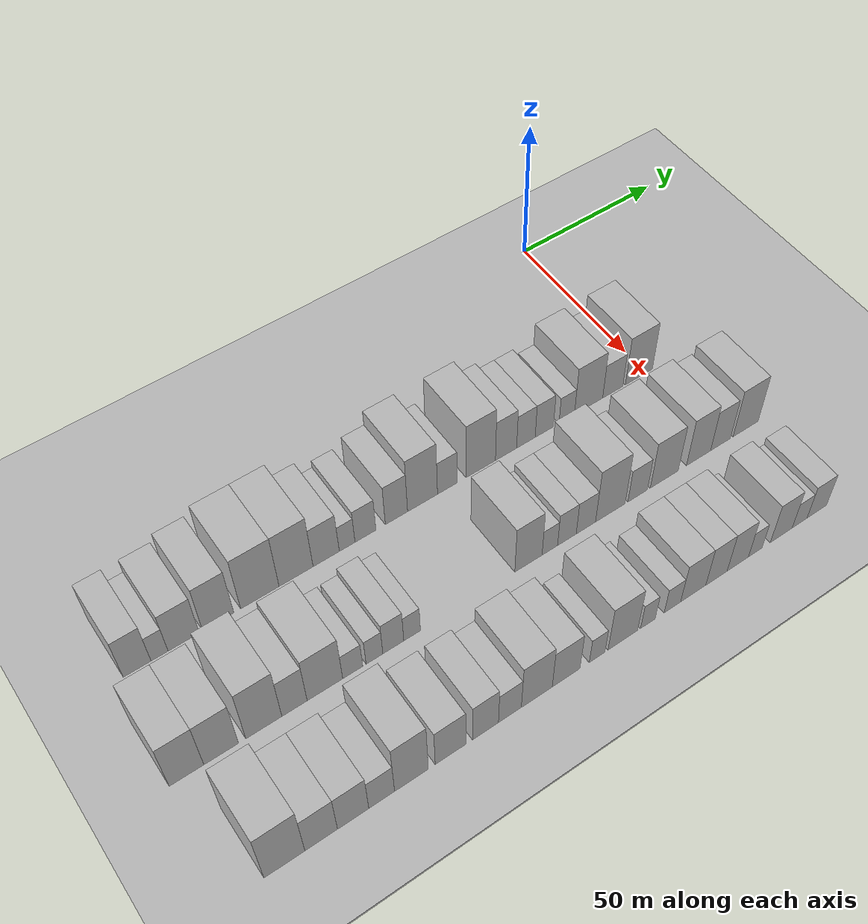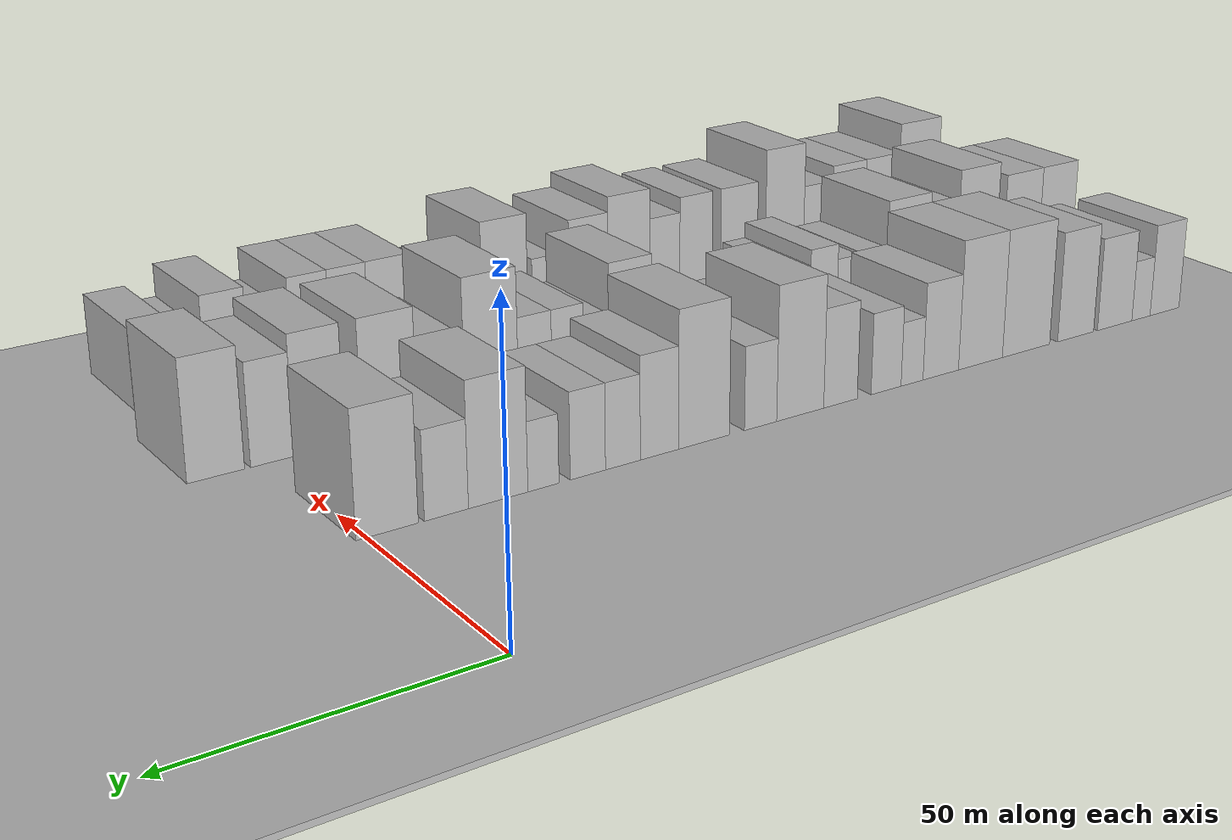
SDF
<sdf version="1.6">
 <world name="default">
  <include><name>ground_plane_1</name><uri>model://HANNAS_ground_plane</uri></include>
  <include>
   <name>ground_plane_2</name>
   <uri>model://HANNAS_ground_plane</uri>
   <pose>100 0 0  0 0 0</pose>
  </include>
  <model name="building_21">
   <static>1</static>
   <pose>50.0000 -165.5747 0 0.000000 0.000000 0.000000</pose>
   <link name="link">
    <pose>0 0 9.00 0 0 0</pose>
    <collision name="collision"><geometry><box><size>20.0000 7.7982 18.0000</size></box></geometry></collision>
    <visual name="visual">
     <cast_shadows>0</cast_shadows>
     <geometry><box><size>20.0000 7.7982 18.0000</size></box></geometry>
     <material>
      <script>
       <uri>model://HANNAS_wall/materials/scripts</uri>
       <uri>model://HANNAS_wall/materials/textures</uri>
       <name>vrc/HANNAS_wall</name>
      </script>
     </material>
    </visual>
   </link>
  </model>
  <model name="building_22">
   <static>1</static>
   <pose>50.0000 -159.2632 0 0.000000 0.000000 0.000000</pose>
   <link name="link">
    <pose>0 0 6.00 0 0 0</pose>
    <collision name="collision"><geometry><box><size>20.0000 4.8246 12.0000</size></box></geometry></collision>
    <visual name="visual">
     <cast_shadows>0</cast_shadows>
     <geometry><box><size>20.0000 4.8246 12.0000</size></box></geometry>
     <material>
      <script>
       <uri>model://HANNAS_wall/materials/scripts</uri>
       <uri>model://HANNAS_wall/materials/textures</uri>
       <name>vrc/HANNAS_wall</name>
      </script>
     </material>
    </visual>
   </link>
  </model>
  <model name="building_23">
   <static>1</static>
   <pose>50.0000 -152.3825 0 0.000000 0.000000 0.000000</pose>
   <link name="link">
    <pose>0 0 9.00 0 0 0</pose>
    <collision name="collision"><geometry><box><size>20.0000 8.9368 18.0000</size></box></geometry></collision>
    <visual name="visual">
     <cast_shadows>0</cast_shadows>
     <geometry><box><size>20.0000 8.9368 18.0000</size></box></geometry>
     <material>
      <script>
       <uri>model://HANNAS_wall/materials/scripts</uri>
       <uri>model://HANNAS_wall/materials/textures</uri>
       <name>vrc/HANNAS_wall</name>
      </script>
     </material>
    </visual>
   </link>
  </model>
  <model name="building_24">
   <static>1</static>
   <pose>50.0000 -142.3646 0 0.000000 0.000000 0.000000</pose>
   <link name="link">
    <pose>0 0 10.50 0 0 0</pose>
    <collision name="collision"><geometry><box><size>20.0000 9.0991 21.0000</size></box></geometry></collision>
    <visual name="visual">
     <cast_shadows>0</cast_shadows>
     <geometry><box><size>20.0000 9.0991 21.0000</size></box></geometry>
     <material>
      <script>
       <uri>model://HANNAS_wall/materials/scripts</uri>
       <uri>model://HANNAS_wall/materials/textures</uri>
       <name>vrc/HANNAS_wall</name>
      </script>
     </material>
    </visual>
   </link>
  </model>
  <model name="building_25">
   <static>1</static>
   <pose>50.0000 -130.0596 0 0.000000 0.000000 0.000000</pose>
   <link name="link">
    <pose>0 0 12.00 0 0 0</pose>
    <collision name="collision"><geometry><box><size>20.0000 11.5109 24.0000</size></box></geometry></collision>
    <visual name="visual">
     <cast_shadows>0</cast_shadows>
     <geometry><box><size>20.0000 11.5109 24.0000</size></box></geometry>
     <material>
      <script>
       <uri>model://HANNAS_wall/materials/scripts</uri>
       <uri>model://HANNAS_wall/materials/textures</uri>
       <name>vrc/HANNAS_wall</name>
      </script>
     </material>
    </visual>
   </link>
  </model>
  <model name="building_26">
   <static>1</static>
   <pose>50.0000 -119.1078 0 0.000000 0.000000 0.000000</pose>
   <link name="link">
    <pose>0 0 12.00 0 0 0</pose>
    <collision name="collision"><geometry><box><size>20.0000 10.3928 24.0000</size></box></geometry></collision>
    <visual name="visual">
     <cast_shadows>0</cast_shadows>
     <geometry><box><size>20.0000 10.3928 24.0000</size></box></geometry>
     <material>
      <script>
       <uri>model://HANNAS_wall/materials/scripts</uri>
       <uri>model://HANNAS_wall/materials/textures</uri>
       <name>vrc/HANNAS_wall</name>
      </script>
     </material>
    </visual>
   </link>
  </model>
  <model name="building_27">
   <static>1</static>
   <pose>50.0000 -109.8348 0 0.000000 0.000000 0.000000</pose>
   <link name="link">
    <pose>0 0 9.00 0 0 0</pose>
    <collision name="collision"><geometry><box><size>20.0000 8.1531 18.0000</size></box></geometry></collision>
    <visual name="visual">
     <cast_shadows>0</cast_shadows>
     <geometry><box><size>20.0000 8.1531 18.0000</size></box></geometry>
     <material>
      <script>
       <uri>model://HANNAS_wall/materials/scripts</uri>
       <uri>model://HANNAS_wall/materials/textures</uri>
       <name>vrc/HANNAS_wall</name>
      </script>
     </material>
    </visual>
   </link>
  </model>
  <model name="building_28">
   <static>1</static>
   <pose>50.0000 -103.2867 0 0.000000 0.000000 0.000000</pose>
   <link name="link">
    <pose>0 0 6.00 0 0 0</pose>
    <collision name="collision"><geometry><box><size>20.0000 4.9432 12.0000</size></box></geometry></collision>
    <visual name="visual">
     <cast_shadows>0</cast_shadows>
     <geometry><box><size>20.0000 4.9432 12.0000</size></box></geometry>
     <material>
      <script>
       <uri>model://HANNAS_wall/materials/scripts</uri>
       <uri>model://HANNAS_wall/materials/textures</uri>
       <name>vrc/HANNAS_wall</name>
      </script>
     </material>
    </visual>
   </link>
  </model>
  <model name="building_29">
   <static>1</static>
   <pose>50.0000 -97.4903 0 0.000000 0.000000 0.000000</pose>
   <link name="link">
    <pose>0 0 7.50 0 0 0</pose>
    <collision name="collision"><geometry><box><size>20.0000 6.6497 15.0000</size></box></geometry></collision>
    <visual name="visual">
     <cast_shadows>0</cast_shadows>
     <geometry><box><size>20.0000 6.6497 15.0000</size></box></geometry>
     <material>
      <script>
       <uri>model://HANNAS_wall/materials/scripts</uri>
       <uri>model://HANNAS_wall/materials/textures</uri>
       <name>vrc/HANNAS_wall</name>
      </script>
     </material>
    </visual>
   </link>
  </model>
  <model name="building_30">
   <static>1</static>
   <pose>50.0000 -87.5600 0 0.000000 0.000000 0.000000</pose>
   <link name="link">
    <pose>0 0 9.00 0 0 0</pose>
    <collision name="collision"><geometry><box><size>20.0000 7.2110 18.0000</size></box></geometry></collision>
    <visual name="visual">
     <cast_shadows>0</cast_shadows>
     <geometry><box><size>20.0000 7.2110 18.0000</size></box></geometry>
     <material>
      <script>
       <uri>model://HANNAS_wall/materials/scripts</uri>
       <uri>model://HANNAS_wall/materials/textures</uri>
       <name>vrc/HANNAS_wall</name>
      </script>
     </material>
    </visual>
   </link>
  </model>
  <model name="building_31">
   <static>1</static>
   <pose>50.0000 -79.0371 0 0.000000 0.000000 0.000000</pose>
   <link name="link">
    <pose>0 0 12.00 0 0 0</pose>
    <collision name="collision"><geometry><box><size>20.0000 9.8348 24.0000</size></box></geometry></collision>
    <visual name="visual">
     <cast_shadows>0</cast_shadows>
     <geometry><box><size>20.0000 9.8348 24.0000</size></box></geometry>
     <material>
      <script>
       <uri>model://HANNAS_wall/materials/scripts</uri>
       <uri>model://HANNAS_wall/materials/textures</uri>
       <name>vrc/HANNAS_wall</name>
      </script>
     </material>
    </visual>
   </link>
  </model>
  <model name="building_32">
   <static>1</static>
   <pose>50.0000 -70.8369 0 0.000000 0.000000 0.000000</pose>
   <link name="link">
    <pose>0 0 7.50 0 0 0</pose>
    <collision name="collision"><geometry><box><size>20.0000 6.5655 15.0000</size></box></geometry></collision>
    <visual name="visual">
     <cast_shadows>0</cast_shadows>
     <geometry><box><size>20.0000 6.5655 15.0000</size></box></geometry>
     <material>
      <script>
       <uri>model://HANNAS_wall/materials/scripts</uri>
       <uri>model://HANNAS_wall/materials/textures</uri>
       <name>vrc/HANNAS_wall</name>
      </script>
     </material>
    </visual>
   </link>
  </model>
  <model name="building_33">
   <static>1</static>
   <pose>50.0000 -59.5603 0 0.000000 0.000000 0.000000</pose>
   <link name="link">
    <pose>0 0 12.00 0 0 0</pose>
    <collision name="collision"><geometry><box><size>20.0000 9.9878 24.0000</size></box></geometry></collision>
    <visual name="visual">
     <cast_shadows>0</cast_shadows>
     <geometry><box><size>20.0000 9.9878 24.0000</size></box></geometry>
     <material>
      <script>
       <uri>model://HANNAS_wall/materials/scripts</uri>
       <uri>model://HANNAS_wall/materials/textures</uri>
       <name>vrc/HANNAS_wall</name>
      </script>
     </material>
    </visual>
   </link>
  </model>
  <model name="building_34">
   <static>1</static>
   <pose>50.0000 -50.9068 0 0.000000 0.000000 0.000000</pose>
   <link name="link">
    <pose>0 0 9.00 0 0 0</pose>
    <collision name="collision"><geometry><box><size>20.0000 7.3193 18.0000</size></box></geometry></collision>
    <visual name="visual">
     <cast_shadows>0</cast_shadows>
     <geometry><box><size>20.0000 7.3193 18.0000</size></box></geometry>
     <material>
      <script>
       <uri>model://HANNAS_wall/materials/scripts</uri>
       <uri>model://HANNAS_wall/materials/textures</uri>
       <name>vrc/HANNAS_wall</name>
      </script>
     </material>
    </visual>
   </link>
  </model>
  <model name="building_35">
   <static>1</static>
   <pose>50.0000 -44.0007 0 0.000000 0.000000 0.000000</pose>
   <link name="link">
    <pose>0 0 7.50 0 0 0</pose>
    <collision name="collision"><geometry><box><size>20.0000 6.4929 15.0000</size></box></geometry></collision>
    <visual name="visual">
     <cast_shadows>0</cast_shadows>
     <geometry><box><size>20.0000 6.4929 15.0000</size></box></geometry>
     <material>
      <script>
       <uri>model://HANNAS_wall/materials/scripts</uri>
       <uri>model://HANNAS_wall/materials/textures</uri>
       <name>vrc/HANNAS_wall</name>
      </script>
     </material>
    </visual>
   </link>
  </model>
  <model name="building_36">
   <static>1</static>
   <pose>50.0000 -37.5284 0 0.000000 0.000000 0.000000</pose>
   <link name="link">
    <pose>0 0 7.50 0 0 0</pose>
    <collision name="collision"><geometry><box><size>20.0000 6.4517 15.0000</size></box></geometry></collision>
    <visual name="visual">
     <cast_shadows>0</cast_shadows>
     <geometry><box><size>20.0000 6.4517 15.0000</size></box></geometry>
     <material>
      <script>
       <uri>model://HANNAS_wall/materials/scripts</uri>
       <uri>model://HANNAS_wall/materials/textures</uri>
       <name>vrc/HANNAS_wall</name>
      </script>
     </material>
    </visual>
   </link>
  </model>
  <model name="building_37">
   <static>1</static>
   <pose>50.0000 -29.5365 0 0.000000 0.000000 0.000000</pose>
   <link name="link">
    <pose>0 0 6.00 0 0 0</pose>
    <collision name="collision"><geometry><box><size>20.0000 5.5320 12.0000</size></box></geometry></collision>
    <visual name="visual">
     <cast_shadows>0</cast_shadows>
     <geometry><box><size>20.0000 5.5320 12.0000</size></box></geometry>
     <material>
      <script>
       <uri>model://HANNAS_wall/materials/scripts</uri>
       <uri>model://HANNAS_wall/materials/textures</uri>
       <name>vrc/HANNAS_wall</name>
      </script>
     </material>
    </visual>
   </link>
  </model>
  <model name="building_38">
   <static>1</static>
   <pose>50.0000 -21.6324 0 0.000000 0.000000 0.000000</pose>
   <link name="link">
    <pose>0 0 10.50 0 0 0</pose>
    <collision name="collision"><geometry><box><size>20.0000 10.2764 21.0000</size></box></geometry></collision>
    <visual name="visual">
     <cast_shadows>0</cast_shadows>
     <geometry><box><size>20.0000 10.2764 21.0000</size></box></geometry>
     <material>
      <script>
       <uri>model://HANNAS_wall/materials/scripts</uri>
       <uri>model://HANNAS_wall/materials/textures</uri>
       <name>vrc/HANNAS_wall</name>
      </script>
     </material>
    </visual>
   </link>
  </model>
  <model name="building_39">
   <static>1</static>
   <pose>50.0000 -12.7907 0 0.000000 0.000000 0.000000</pose>
   <link name="link">
    <pose>0 0 7.50 0 0 0</pose>
    <collision name="collision"><geometry><box><size>20.0000 7.4069 15.0000</size></box></geometry></collision>
    <visual name="visual">
     <cast_shadows>0</cast_shadows>
     <geometry><box><size>20.0000 7.4069 15.0000</size></box></geometry>
     <material>
      <script>
       <uri>model://HANNAS_wall/materials/scripts</uri>
       <uri>model://HANNAS_wall/materials/textures</uri>
       <name>vrc/HANNAS_wall</name>
      </script>
     </material>
    </visual>
   </link>
  </model>
  <model name="building_40">
   <static>1</static>
   <pose>50.0000 -3.0207 0 0.000000 0.000000 0.000000</pose>
   <link name="link">
    <pose>0 0 10.50 0 0 0</pose>
    <collision name="collision"><geometry><box><size>20.0000 10.1332 21.0000</size></box></geometry></collision>
    <visual name="visual">
     <cast_shadows>0</cast_shadows>
     <geometry><box><size>20.0000 10.1332 21.0000</size></box></geometry>
     <material>
      <script>
       <uri>model://HANNAS_wall/materials/scripts</uri>
       <uri>model://HANNAS_wall/materials/textures</uri>
       <name>vrc/HANNAS_wall</name>
      </script>
     </material>
    </visual>
   </link>
  </model>
  <model name="building_100">
   <static>1</static>
   <pose>82.0000 -168.8416 0 0.000000 0.000000 0.000000</pose>
   <link name="link">
    <pose>0 0 10.50 0 0 0</pose>
    <collision name="collision"><geometry><box><size>20.0000 9.3825 21.0000</size></box></geometry></collision>
    <visual name="visual">
     <cast_shadows>0</cast_shadows>
     <geometry><box><size>20.0000 9.3825 21.0000</size></box></geometry>
     <material>
      <script>
       <uri>model://HANNAS_wall/materials/scripts</uri>
       <uri>model://HANNAS_wall/materials/textures</uri>
       <name>vrc/HANNAS_wall</name>
      </script>
     </material>
    </visual>
   </link>
  </model>
  <model name="building_101">
   <static>1</static>
   <pose>82.0000 -159.3698 0 0.000000 0.000000 0.000000</pose>
   <link name="link">
    <pose>0 0 10.50 0 0 0</pose>
    <collision name="collision"><geometry><box><size>20.0000 9.5611 21.0000</size></box></geometry></collision>
    <visual name="visual">
     <cast_shadows>0</cast_shadows>
     <geometry><box><size>20.0000 9.5611 21.0000</size></box></geometry>
     <material>
      <script>
       <uri>model://HANNAS_wall/materials/scripts</uri>
       <uri>model://HANNAS_wall/materials/textures</uri>
       <name>vrc/HANNAS_wall</name>
      </script>
     </material>
    </visual>
   </link>
  </model>
  <model name="building_102">
   <static>1</static>
   <pose>82.0000 -147.5073 0 0.000000 0.000000 0.000000</pose>
   <link name="link">
    <pose>0 0 12.00 0 0 0</pose>
    <collision name="collision"><geometry><box><size>20.0000 10.1639 24.0000</size></box></geometry></collision>
    <visual name="visual">
     <cast_shadows>0</cast_shadows>
     <geometry><box><size>20.0000 10.1639 24.0000</size></box></geometry>
     <material>
      <script>
       <uri>model://HANNAS_wall/materials/scripts</uri>
       <uri>model://HANNAS_wall/materials/textures</uri>
       <name>vrc/HANNAS_wall</name>
      </script>
     </material>
    </visual>
   </link>
  </model>
  <model name="building_103">
   <static>1</static>
   <pose>82.0000 -138.7994 0 0.000000 0.000000 0.000000</pose>
   <link name="link">
    <pose>0 0 9.00 0 0 0</pose>
    <collision name="collision"><geometry><box><size>20.0000 7.2520 18.0000</size></box></geometry></collision>
    <visual name="visual">
     <cast_shadows>0</cast_shadows>
     <geometry><box><size>20.0000 7.2520 18.0000</size></box></geometry>
     <material>
      <script>
       <uri>model://HANNAS_wall/materials/scripts</uri>
       <uri>model://HANNAS_wall/materials/textures</uri>
       <name>vrc/HANNAS_wall</name>
      </script>
     </material>
    </visual>
   </link>
  </model>
  <model name="building_104">
   <static>1</static>
   <pose>82.0000 -129.9816 0 0.000000 0.000000 0.000000</pose>
   <link name="link">
    <pose>0 0 10.50 0 0 0</pose>
    <collision name="collision"><geometry><box><size>20.0000 10.3834 21.0000</size></box></geometry></collision>
    <visual name="visual">
     <cast_shadows>0</cast_shadows>
     <geometry><box><size>20.0000 10.3834 21.0000</size></box></geometry>
     <material>
      <script>
       <uri>model://HANNAS_wall/materials/scripts</uri>
       <uri>model://HANNAS_wall/materials/textures</uri>
       <name>vrc/HANNAS_wall</name>
      </script>
     </material>
    </visual>
   </link>
  </model>
  <model name="building_105">
   <static>1</static>
   <pose>82.0000 -121.8273 0 0.000000 0.000000 0.000000</pose>
   <link name="link">
    <pose>0 0 6.00 0 0 0</pose>
    <collision name="collision"><geometry><box><size>20.0000 5.9252 12.0000</size></box></geometry></collision>
    <visual name="visual">
     <cast_shadows>0</cast_shadows>
     <geometry><box><size>20.0000 5.9252 12.0000</size></box></geometry>
     <material>
      <script>
       <uri>model://HANNAS_wall/materials/scripts</uri>
       <uri>model://HANNAS_wall/materials/textures</uri>
       <name>vrc/HANNAS_wall</name>
      </script>
     </material>
    </visual>
   </link>
  </model>
  <model name="building_106">
   <static>1</static>
   <pose>82.0000 -115.3562 0 0.000000 0.000000 0.000000</pose>
   <link name="link">
    <pose>0 0 6.00 0 0 0</pose>
    <collision name="collision"><geometry><box><size>20.0000 5.0170 12.0000</size></box></geometry></collision>
    <visual name="visual">
     <cast_shadows>0</cast_shadows>
     <geometry><box><size>20.0000 5.0170 12.0000</size></box></geometry>
     <material>
      <script>
       <uri>model://HANNAS_wall/materials/scripts</uri>
       <uri>model://HANNAS_wall/materials/textures</uri>
       <name>vrc/HANNAS_wall</name>
      </script>
     </material>
    </visual>
   </link>
  </model>
  <model name="building_107">
   <static>1</static>
   <pose>82.0000 -109.6631 0 0.000000 0.000000 0.000000</pose>
   <link name="link">
    <pose>0 0 7.50 0 0 0</pose>
    <collision name="collision"><geometry><box><size>20.0000 6.3691 15.0000</size></box></geometry></collision>
    <visual name="visual">
     <cast_shadows>0</cast_shadows>
     <geometry><box><size>20.0000 6.3691 15.0000</size></box></geometry>
     <material>
      <script>
       <uri>model://HANNAS_wall/materials/scripts</uri>
       <uri>model://HANNAS_wall/materials/textures</uri>
       <name>vrc/HANNAS_wall</name>
      </script>
     </material>
    </visual>
   </link>
  </model>
  <model name="building_108">
   <static>1</static>
   <pose>82.0000 -103.9284 0 0.000000 0.000000 0.000000</pose>
   <link name="link">
    <pose>0 0 6.00 0 0 0</pose>
    <collision name="collision"><geometry><box><size>20.0000 5.1003 12.0000</size></box></geometry></collision>
    <visual name="visual">
     <cast_shadows>0</cast_shadows>
     <geometry><box><size>20.0000 5.1003 12.0000</size></box></geometry>
     <material>
      <script>
       <uri>model://HANNAS_wall/materials/scripts</uri>
       <uri>model://HANNAS_wall/materials/textures</uri>
       <name>vrc/HANNAS_wall</name>
      </script>
     </material>
    </visual>
   </link>
  </model>
  <model name="building_109">
   <static>1</static>
   <pose>82.0000 -66.9388 0 0.000000 0.000000 0.000000</pose>
   <link name="link">
    <pose>0 0 10.50 0 0 0</pose>
    <collision name="collision"><geometry><box><size>20.0000 8.9596 21.0000</size></box></geometry></collision>
    <visual name="visual">
     <cast_shadows>0</cast_shadows>
     <geometry><box><size>20.0000 8.9596 21.0000</size></box></geometry>
     <material>
      <script>
       <uri>model://HANNAS_wall/materials/scripts</uri>
       <uri>model://HANNAS_wall/materials/textures</uri>
       <name>vrc/HANNAS_wall</name>
      </script>
     </material>
    </visual>
   </link>
  </model>
  <model name="building_110">
   <static>1</static>
   <pose>82.0000 -59.8773 0 0.000000 0.000000 0.000000</pose>
   <link name="link">
    <pose>0 0 6.00 0 0 0</pose>
    <collision name="collision"><geometry><box><size>20.0000 5.1635 12.0000</size></box></geometry></collision>
    <visual name="visual">
     <cast_shadows>0</cast_shadows>
     <geometry><box><size>20.0000 5.1635 12.0000</size></box></geometry>
     <material>
      <script>
       <uri>model://HANNAS_wall/materials/scripts</uri>
       <uri>model://HANNAS_wall/materials/textures</uri>
       <name>vrc/HANNAS_wall</name>
      </script>
     </material>
    </visual>
   </link>
  </model>
  <model name="building_111">
   <static>1</static>
   <pose>82.0000 -54.1463 0 0.000000 0.000000 0.000000</pose>
   <link name="link">
    <pose>0 0 7.50 0 0 0</pose>
    <collision name="collision"><geometry><box><size>20.0000 6.2985 15.0000</size></box></geometry></collision>
    <visual name="visual">
     <cast_shadows>0</cast_shadows>
     <geometry><box><size>20.0000 6.2985 15.0000</size></box></geometry>
     <material>
      <script>
       <uri>model://HANNAS_wall/materials/scripts</uri>
       <uri>model://HANNAS_wall/materials/textures</uri>
       <name>vrc/HANNAS_wall</name>
      </script>
     </material>
    </visual>
   </link>
  </model>
  <model name="building_112">
   <static>1</static>
   <pose>82.0000 -47.6945 0 0.000000 0.000000 0.000000</pose>
   <link name="link">
    <pose>0 0 7.50 0 0 0</pose>
    <collision name="collision"><geometry><box><size>20.0000 6.6052 15.0000</size></box></geometry></collision>
    <visual name="visual">
     <cast_shadows>0</cast_shadows>
     <geometry><box><size>20.0000 6.6052 15.0000</size></box></geometry>
     <material>
      <script>
       <uri>model://HANNAS_wall/materials/scripts</uri>
       <uri>model://HANNAS_wall/materials/textures</uri>
       <name>vrc/HANNAS_wall</name>
      </script>
     </material>
    </visual>
   </link>
  </model>
  <model name="building_113">
   <static>1</static>
   <pose>82.0000 -39.2772 0 0.000000 0.000000 0.000000</pose>
   <link name="link">
    <pose>0 0 12.00 0 0 0</pose>
    <collision name="collision"><geometry><box><size>20.0000 10.2294 24.0000</size></box></geometry></collision>
    <visual name="visual">
     <cast_shadows>0</cast_shadows>
     <geometry><box><size>20.0000 10.2294 24.0000</size></box></geometry>
     <material>
      <script>
       <uri>model://HANNAS_wall/materials/scripts</uri>
       <uri>model://HANNAS_wall/materials/textures</uri>
       <name>vrc/HANNAS_wall</name>
      </script>
     </material>
    </visual>
   </link>
  </model>
  <model name="building_114">
   <static>1</static>
   <pose>82.0000 -29.7091 0 0.000000 0.000000 0.000000</pose>
   <link name="link">
    <pose>0 0 7.50 0 0 0</pose>
    <collision name="collision"><geometry><box><size>20.0000 6.9067 15.0000</size></box></geometry></collision>
    <visual name="visual">
     <cast_shadows>0</cast_shadows>
     <geometry><box><size>20.0000 6.9067 15.0000</size></box></geometry>
     <material>
      <script>
       <uri>model://HANNAS_wall/materials/scripts</uri>
       <uri>model://HANNAS_wall/materials/textures</uri>
       <name>vrc/HANNAS_wall</name>
      </script>
     </material>
    </visual>
   </link>
  </model>
  <model name="building_115">
   <static>1</static>
   <pose>82.0000 -20.2514 0 0.000000 0.000000 0.000000</pose>
   <link name="link">
    <pose>0 0 10.50 0 0 0</pose>
    <collision name="collision"><geometry><box><size>20.0000 10.0088 21.0000</size></box></geometry></collision>
    <visual name="visual">
     <cast_shadows>0</cast_shadows>
     <geometry><box><size>20.0000 10.0088 21.0000</size></box></geometry>
     <material>
      <script>
       <uri>model://HANNAS_wall/materials/scripts</uri>
       <uri>model://HANNAS_wall/materials/textures</uri>
       <name>vrc/HANNAS_wall</name>
      </script>
     </material>
    </visual>
   </link>
  </model>
  <model name="building_116">
   <static>1</static>
   <pose>82.0000 -7.8283 0 0.000000 0.000000 0.000000</pose>
   <link name="link">
    <pose>0 0 10.50 0 0 0</pose>
    <collision name="collision"><geometry><box><size>20.0000 8.8373 21.0000</size></box></geometry></collision>
    <visual name="visual">
     <cast_shadows>0</cast_shadows>
     <geometry><box><size>20.0000 8.8373 21.0000</size></box></geometry>
     <material>
      <script>
       <uri>model://HANNAS_wall/materials/scripts</uri>
       <uri>model://HANNAS_wall/materials/textures</uri>
       <name>vrc/HANNAS_wall</name>
      </script>
     </material>
    </visual>
   </link>
  </model>
  <model name="building_117">
   <static>1</static>
   <pose>82.0000 0.2742 0 0.000000 0.000000 0.000000</pose>
   <link name="link">
    <pose>0 0 9.00 0 0 0</pose>
    <collision name="collision"><geometry><box><size>20.0000 7.3678 18.0000</size></box></geometry></collision>
    <visual name="visual">
     <cast_shadows>0</cast_shadows>
     <geometry><box><size>20.0000 7.3678 18.0000</size></box></geometry>
     <material>
      <script>
       <uri>model://HANNAS_wall/materials/scripts</uri>
       <uri>model://HANNAS_wall/materials/textures</uri>
       <name>vrc/HANNAS_wall</name>
      </script>
     </material>
    </visual>
   </link>
  </model>
  <model name="building_118">
   <static>1</static>
   <pose>82.0000 9.6975 0 0.000000 0.000000 0.000000</pose>
   <link name="link">
    <pose>0 0 10.50 0 0 0</pose>
    <collision name="collision"><geometry><box><size>20.0000 9.4789 21.0000</size></box></geometry></collision>
    <visual name="visual">
     <cast_shadows>0</cast_shadows>
     <geometry><box><size>20.0000 9.4789 21.0000</size></box></geometry>
     <material>
      <script>
       <uri>model://HANNAS_wall/materials/scripts</uri>
       <uri>model://HANNAS_wall/materials/textures</uri>
       <name>vrc/HANNAS_wall</name>
      </script>
     </material>
    </visual>
   </link>
  </model>
  <model name="building_182">
   <static>1</static>
   <pose>114.0000 -160.6883 0 0.000000 0.000000 0.000000</pose>
   <link name="link">
    <pose>0 0 12.00 0 0 0</pose>
    <collision name="collision"><geometry><box><size>20.0000 10.9297 24.0000</size></box></geometry></collision>
    <visual name="visual">
     <cast_shadows>0</cast_shadows>
     <geometry><box><size>20.0000 10.9297 24.0000</size></box></geometry>
     <material>
      <script>
       <uri>model://HANNAS_wall/materials/scripts</uri>
       <uri>model://HANNAS_wall/materials/textures</uri>
       <name>vrc/HANNAS_wall</name>
      </script>
     </material>
    </visual>
   </link>
  </model>
  <model name="building_183">
   <static>1</static>
   <pose>114.0000 -150.7744 0 0.000000 0.000000 0.000000</pose>
   <link name="link">
    <pose>0 0 9.00 0 0 0</pose>
    <collision name="collision"><geometry><box><size>20.0000 8.8983 18.0000</size></box></geometry></collision>
    <visual name="visual">
     <cast_shadows>0</cast_shadows>
     <geometry><box><size>20.0000 8.8983 18.0000</size></box></geometry>
     <material>
      <script>
       <uri>model://HANNAS_wall/materials/scripts</uri>
       <uri>model://HANNAS_wall/materials/textures</uri>
       <name>vrc/HANNAS_wall</name>
      </script>
     </material>
    </visual>
   </link>
  </model>
  <model name="building_184">
   <static>1</static>
   <pose>114.0000 -141.9886 0 0.000000 0.000000 0.000000</pose>
   <link name="link">
    <pose>0 0 9.00 0 0 0</pose>
    <collision name="collision"><geometry><box><size>20.0000 8.6731 18.0000</size></box></geometry></collision>
    <visual name="visual">
     <cast_shadows>0</cast_shadows>
     <geometry><box><size>20.0000 8.6731 18.0000</size></box></geometry>
     <material>
      <script>
       <uri>model://HANNAS_wall/materials/scripts</uri>
       <uri>model://HANNAS_wall/materials/textures</uri>
       <name>vrc/HANNAS_wall</name>
      </script>
     </material>
    </visual>
   </link>
  </model>
  <model name="building_185">
   <static>1</static>
   <pose>114.0000 -134.0166 0 0.000000 0.000000 0.000000</pose>
   <link name="link">
    <pose>0 0 7.50 0 0 0</pose>
    <collision name="collision"><geometry><box><size>20.0000 7.2708 15.0000</size></box></geometry></collision>
    <visual name="visual">
     <cast_shadows>0</cast_shadows>
     <geometry><box><size>20.0000 7.2708 15.0000</size></box></geometry>
     <material>
      <script>
       <uri>model://HANNAS_wall/materials/scripts</uri>
       <uri>model://HANNAS_wall/materials/textures</uri>
       <name>vrc/HANNAS_wall</name>
      </script>
     </material>
    </visual>
   </link>
  </model>
  <model name="building_186">
   <static>1</static>
   <pose>114.0000 -125.5439 0 0.000000 0.000000 0.000000</pose>
   <link name="link">
    <pose>0 0 12.00 0 0 0</pose>
    <collision name="collision"><geometry><box><size>20.0000 9.6747 24.0000</size></box></geometry></collision>
    <visual name="visual">
     <cast_shadows>0</cast_shadows>
     <geometry><box><size>20.0000 9.6747 24.0000</size></box></geometry>
     <material>
      <script>
       <uri>model://HANNAS_wall/materials/scripts</uri>
       <uri>model://HANNAS_wall/materials/textures</uri>
       <name>vrc/HANNAS_wall</name>
      </script>
     </material>
    </visual>
   </link>
  </model>
  <model name="building_187">
   <static>1</static>
   <pose>114.0000 -114.2100 0 0.000000 0.000000 0.000000</pose>
   <link name="link">
    <pose>0 0 9.00 0 0 0</pose>
    <collision name="collision"><geometry><box><size>20.0000 8.9930 18.0000</size></box></geometry></collision>
    <visual name="visual">
     <cast_shadows>0</cast_shadows>
     <geometry><box><size>20.0000 8.9930 18.0000</size></box></geometry>
     <material>
      <script>
       <uri>model://HANNAS_wall/materials/scripts</uri>
       <uri>model://HANNAS_wall/materials/textures</uri>
       <name>vrc/HANNAS_wall</name>
      </script>
     </material>
    </visual>
   </link>
  </model>
  <model name="building_188">
   <static>1</static>
   <pose>114.0000 -103.8272 0 0.000000 0.000000 0.000000</pose>
   <link name="link">
    <pose>0 0 9.00 0 0 0</pose>
    <collision name="collision"><geometry><box><size>20.0000 7.7726 18.0000</size></box></geometry></collision>
    <visual name="visual">
     <cast_shadows>0</cast_shadows>
     <geometry><box><size>20.0000 7.7726 18.0000</size></box></geometry>
     <material>
      <script>
       <uri>model://HANNAS_wall/materials/scripts</uri>
       <uri>model://HANNAS_wall/materials/textures</uri>
       <name>vrc/HANNAS_wall</name>
      </script>
     </material>
    </visual>
   </link>
  </model>
  <model name="building_189">
   <static>1</static>
   <pose>114.0000 -96.4556 0 0.000000 0.000000 0.000000</pose>
   <link name="link">
    <pose>0 0 7.50 0 0 0</pose>
    <collision name="collision"><geometry><box><size>20.0000 6.9707 15.0000</size></box></geometry></collision>
    <visual name="visual">
     <cast_shadows>0</cast_shadows>
     <geometry><box><size>20.0000 6.9707 15.0000</size></box></geometry>
     <material>
      <script>
       <uri>model://HANNAS_wall/materials/scripts</uri>
       <uri>model://HANNAS_wall/materials/textures</uri>
       <name>vrc/HANNAS_wall</name>
      </script>
     </material>
    </visual>
   </link>
  </model>
  <model name="building_190">
   <static>1</static>
   <pose>114.0000 -88.1891 0 0.000000 0.000000 0.000000</pose>
   <link name="link">
    <pose>0 0 10.50 0 0 0</pose>
    <collision name="collision"><geometry><box><size>20.0000 9.5623 21.0000</size></box></geometry></collision>
    <visual name="visual">
     <cast_shadows>0</cast_shadows>
     <geometry><box><size>20.0000 9.5623 21.0000</size></box></geometry>
     <material>
      <script>
       <uri>model://HANNAS_wall/materials/scripts</uri>
       <uri>model://HANNAS_wall/materials/textures</uri>
       <name>vrc/HANNAS_wall</name>
      </script>
     </material>
    </visual>
   </link>
  </model>
  <model name="building_191">
   <static>1</static>
   <pose>114.0000 -79.0451 0 0.000000 0.000000 0.000000</pose>
   <link name="link">
    <pose>0 0 9.00 0 0 0</pose>
    <collision name="collision"><geometry><box><size>20.0000 8.7258 18.0000</size></box></geometry></collision>
    <visual name="visual">
     <cast_shadows>0</cast_shadows>
     <geometry><box><size>20.0000 8.7258 18.0000</size></box></geometry>
     <material>
      <script>
       <uri>model://HANNAS_wall/materials/scripts</uri>
       <uri>model://HANNAS_wall/materials/textures</uri>
       <name>vrc/HANNAS_wall</name>
      </script>
     </material>
    </visual>
   </link>
  </model>
  <model name="building_192">
   <static>1</static>
   <pose>114.0000 -69.1702 0 0.000000 0.000000 0.000000</pose>
   <link name="link">
    <pose>0 0 6.00 0 0 0</pose>
    <collision name="collision"><geometry><box><size>20.0000 5.0239 12.0000</size></box></geometry></collision>
    <visual name="visual">
     <cast_shadows>0</cast_shadows>
     <geometry><box><size>20.0000 5.0239 12.0000</size></box></geometry>
     <material>
      <script>
       <uri>model://HANNAS_wall/materials/scripts</uri>
       <uri>model://HANNAS_wall/materials/textures</uri>
       <name>vrc/HANNAS_wall</name>
      </script>
     </material>
    </visual>
   </link>
  </model>
  <model name="building_193">
   <static>1</static>
   <pose>114.0000 -60.8388 0 0.000000 0.000000 0.000000</pose>
   <link name="link">
    <pose>0 0 10.50 0 0 0</pose>
    <collision name="collision"><geometry><box><size>20.0000 9.6390 21.0000</size></box></geometry></collision>
    <visual name="visual">
     <cast_shadows>0</cast_shadows>
     <geometry><box><size>20.0000 9.6390 21.0000</size></box></geometry>
     <material>
      <script>
       <uri>model://HANNAS_wall/materials/scripts</uri>
       <uri>model://HANNAS_wall/materials/textures</uri>
       <name>vrc/HANNAS_wall</name>
      </script>
     </material>
    </visual>
   </link>
  </model>
  <model name="building_194">
   <static>1</static>
   <pose>114.0000 -52.5958 0 0.000000 0.000000 0.000000</pose>
   <link name="link">
    <pose>0 0 6.00 0 0 0</pose>
    <collision name="collision"><geometry><box><size>20.0000 4.8469 12.0000</size></box></geometry></collision>
    <visual name="visual">
     <cast_shadows>0</cast_shadows>
     <geometry><box><size>20.0000 4.8469 12.0000</size></box></geometry>
     <material>
      <script>
       <uri>model://HANNAS_wall/materials/scripts</uri>
       <uri>model://HANNAS_wall/materials/textures</uri>
       <name>vrc/HANNAS_wall</name>
      </script>
     </material>
    </visual>
   </link>
  </model>
  <model name="building_195">
   <static>1</static>
   <pose>114.0000 -44.3892 0 0.000000 0.000000 0.000000</pose>
   <link name="link">
    <pose>0 0 6.00 0 0 0</pose>
    <collision name="collision"><geometry><box><size>20.0000 5.5664 12.0000</size></box></geometry></collision>
    <visual name="visual">
     <cast_shadows>0</cast_shadows>
     <geometry><box><size>20.0000 5.5664 12.0000</size></box></geometry>
     <material>
      <script>
       <uri>model://HANNAS_wall/materials/scripts</uri>
       <uri>model://HANNAS_wall/materials/textures</uri>
       <name>vrc/HANNAS_wall</name>
      </script>
     </material>
    </visual>
   </link>
  </model>
  <model name="building_196">
   <static>1</static>
   <pose>114.0000 -37.3029 0 0.000000 0.000000 0.000000</pose>
   <link name="link">
    <pose>0 0 9.00 0 0 0</pose>
    <collision name="collision"><geometry><box><size>20.0000 8.6061 18.0000</size></box></geometry></collision>
    <visual name="visual">
     <cast_shadows>0</cast_shadows>
     <geometry><box><size>20.0000 8.6061 18.0000</size></box></geometry>
     <material>
      <script>
       <uri>model://HANNAS_wall/materials/scripts</uri>
       <uri>model://HANNAS_wall/materials/textures</uri>
       <name>vrc/HANNAS_wall</name>
      </script>
     </material>
    </visual>
   </link>
  </model>
  <model name="building_197">
   <static>1</static>
   <pose>114.0000 -29.2899 0 0.000000 0.000000 0.000000</pose>
   <link name="link">
    <pose>0 0 9.00 0 0 0</pose>
    <collision name="collision"><geometry><box><size>20.0000 7.4198 18.0000</size></box></geometry></collision>
    <visual name="visual">
     <cast_shadows>0</cast_shadows>
     <geometry><box><size>20.0000 7.4198 18.0000</size></box></geometry>
     <material>
      <script>
       <uri>model://HANNAS_wall/materials/scripts</uri>
       <uri>model://HANNAS_wall/materials/textures</uri>
       <name>vrc/HANNAS_wall</name>
      </script>
     </material>
    </visual>
   </link>
  </model>
  <model name="building_198">
   <static>1</static>
   <pose>114.0000 -21.8542 0 0.000000 0.000000 0.000000</pose>
   <link name="link">
    <pose>0 0 9.00 0 0 0</pose>
    <collision name="collision"><geometry><box><size>20.0000 7.4517 18.0000</size></box></geometry></collision>
    <visual name="visual">
     <cast_shadows>0</cast_shadows>
     <geometry><box><size>20.0000 7.4517 18.0000</size></box></geometry>
     <material>
      <script>
       <uri>model://HANNAS_wall/materials/scripts</uri>
       <uri>model://HANNAS_wall/materials/textures</uri>
       <name>vrc/HANNAS_wall</name>
      </script>
     </material>
    </visual>
   </link>
  </model>
  <model name="building_199">
   <static>1</static>
   <pose>114.0000 -15.6994 0 0.000000 0.000000 0.000000</pose>
   <link name="link">
    <pose>0 0 6.00 0 0 0</pose>
    <collision name="collision"><geometry><box><size>20.0000 4.8578 12.0000</size></box></geometry></collision>
    <visual name="visual">
     <cast_shadows>0</cast_shadows>
     <geometry><box><size>20.0000 4.8578 12.0000</size></box></geometry>
     <material>
      <script>
       <uri>model://HANNAS_wall/materials/scripts</uri>
       <uri>model://HANNAS_wall/materials/textures</uri>
       <name>vrc/HANNAS_wall</name>
      </script>
     </material>
    </visual>
   </link>
  </model>
  <model name="building_200">
   <static>1</static>
   <pose>114.0000 -6.3267 0 0.000000 0.000000 0.000000</pose>
   <link name="link">
    <pose>0 0 9.00 0 0 0</pose>
    <collision name="collision"><geometry><box><size>20.0000 7.8875 18.0000</size></box></geometry></collision>
    <visual name="visual">
     <cast_shadows>0</cast_shadows>
     <geometry><box><size>20.0000 7.8875 18.0000</size></box></geometry>
     <material>
      <script>
       <uri>model://HANNAS_wall/materials/scripts</uri>
       <uri>model://HANNAS_wall/materials/textures</uri>
       <name>vrc/HANNAS_wall</name>
      </script>
     </material>
    </visual>
   </link>
  </model>
  <model name="building_201">
   <static>1</static>
   <pose>114.0000 0.3375 0 0.000000 0.000000 0.000000</pose>
   <link name="link">
    <pose>0 0 6.00 0 0 0</pose>
    <collision name="collision"><geometry><box><size>20.0000 5.4410 12.0000</size></box></geometry></collision>
    <visual name="visual">
     <cast_shadows>0</cast_shadows>
     <geometry><box><size>20.0000 5.4410 12.0000</size></box></geometry>
     <material>
      <script>
       <uri>model://HANNAS_wall/materials/scripts</uri>
       <uri>model://HANNAS_wall/materials/textures</uri>
       <name>vrc/HANNAS_wall</name>
      </script>
     </material>
    </visual>
   </link>
  </model>
  <model name="building_202">
   <static>1</static>
   <pose>114.0000 6.6842 0 0.000000 0.000000 0.000000</pose>
   <link name="link">
    <pose>0 0 7.50 0 0 0</pose>
    <collision name="collision"><geometry><box><size>20.0000 7.2524 15.0000</size></box></geometry></collision>
    <visual name="visual">
     <cast_shadows>0</cast_shadows>
     <geometry><box><size>20.0000 7.2524 15.0000</size></box></geometry>
     <material>
      <script>
       <uri>model://HANNAS_wall/materials/scripts</uri>
       <uri>model://HANNAS_wall/materials/textures</uri>
       <name>vrc/HANNAS_wall</name>
      </script>
     </material>
    </visual>
   </link>
  </model>
 </world>
</sdf>
